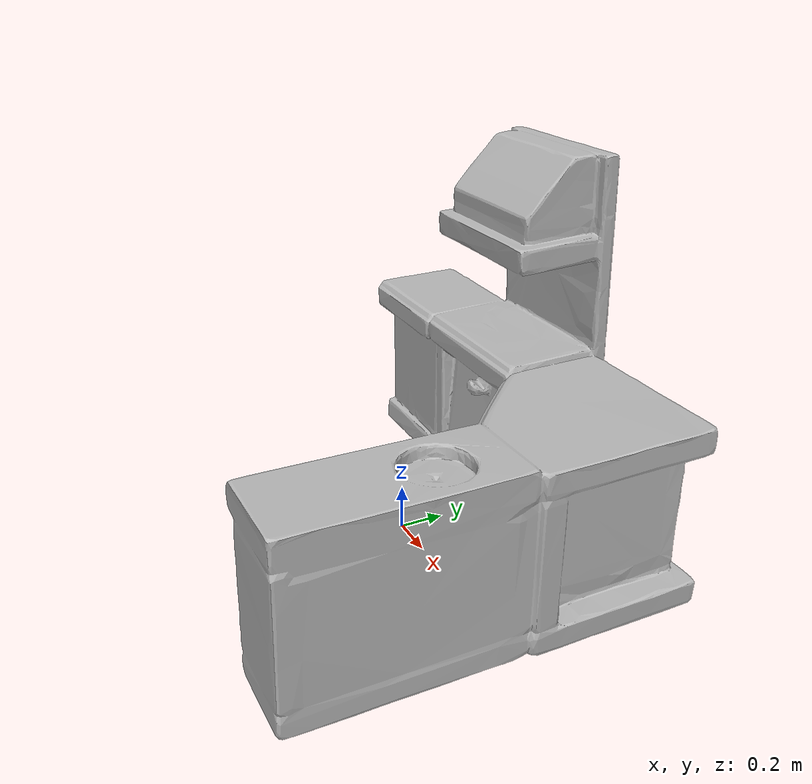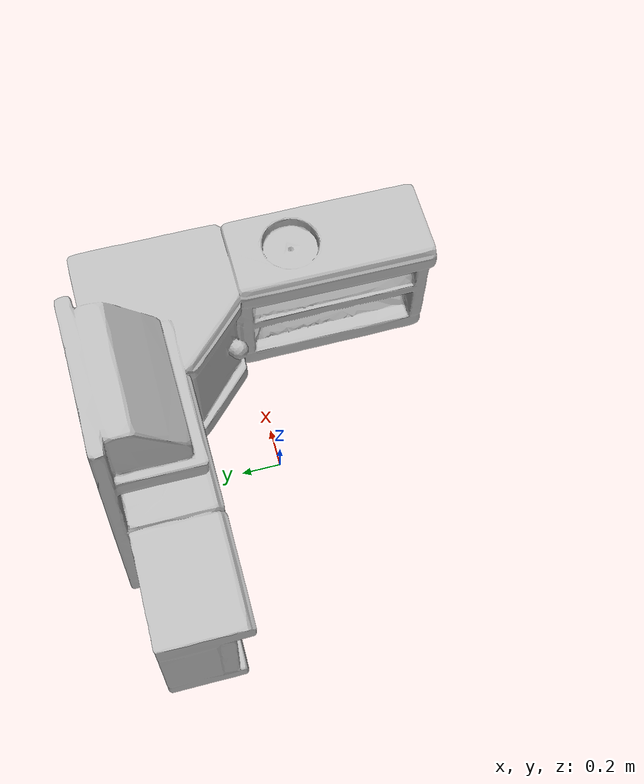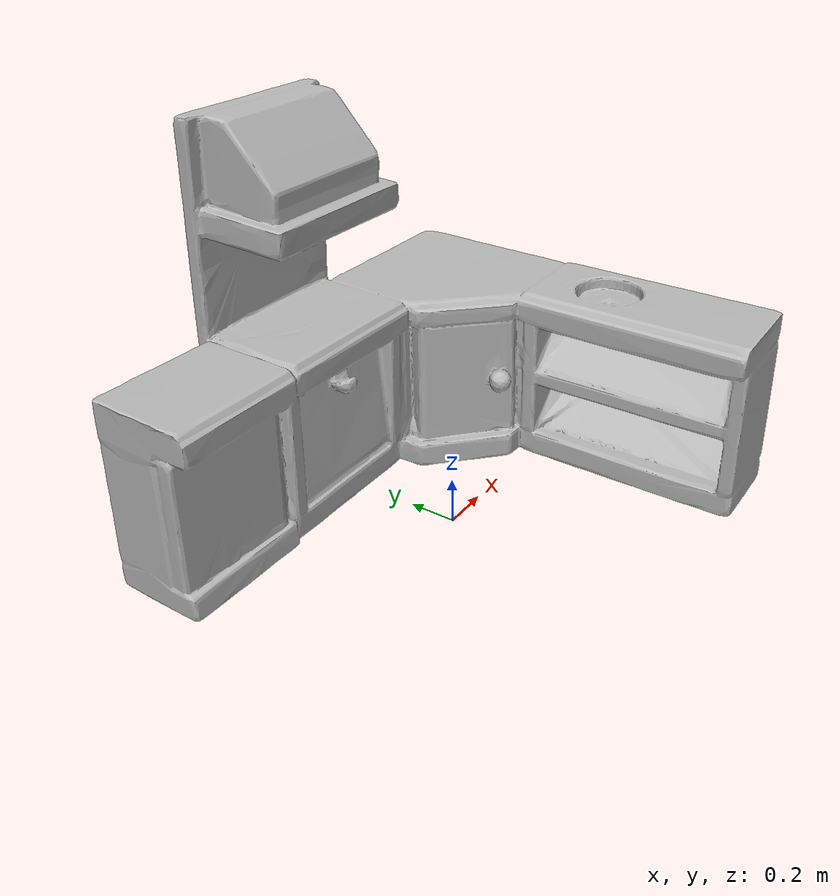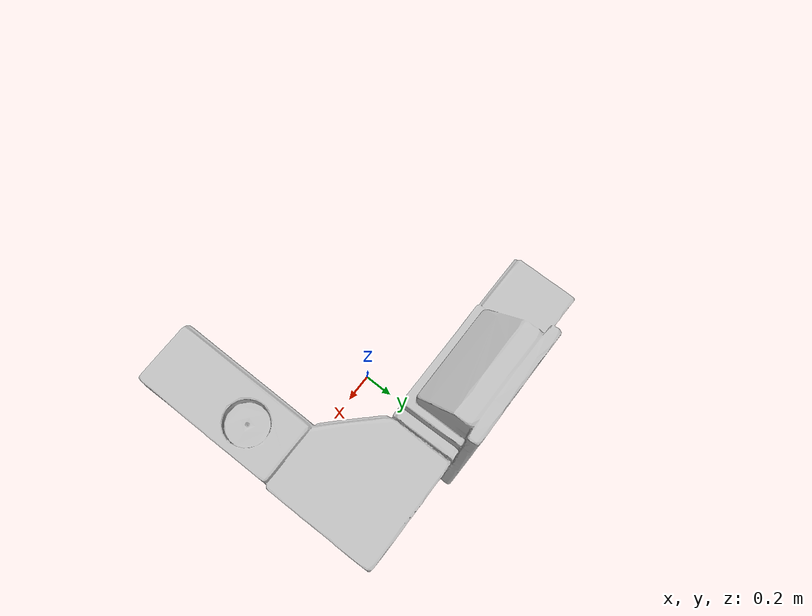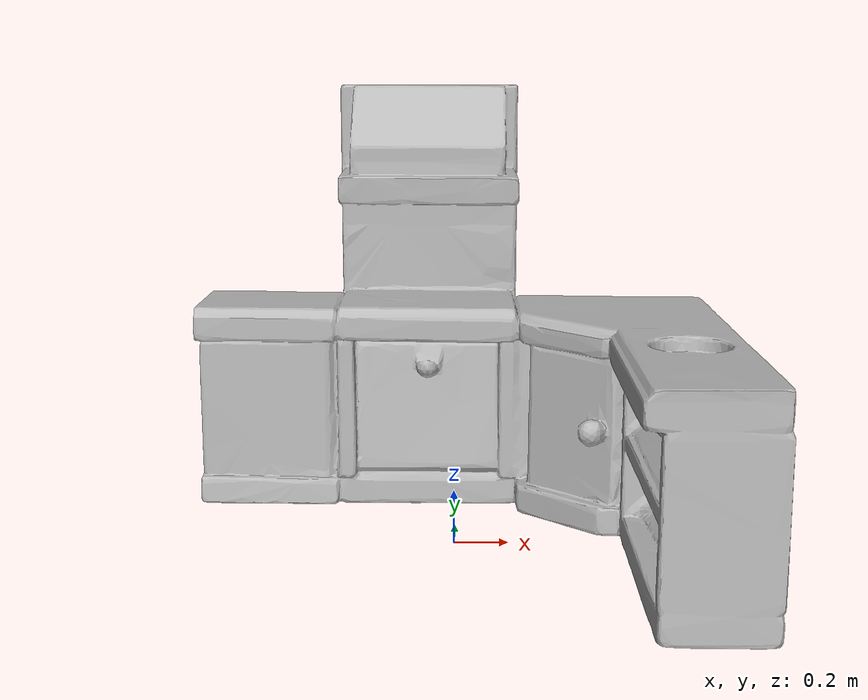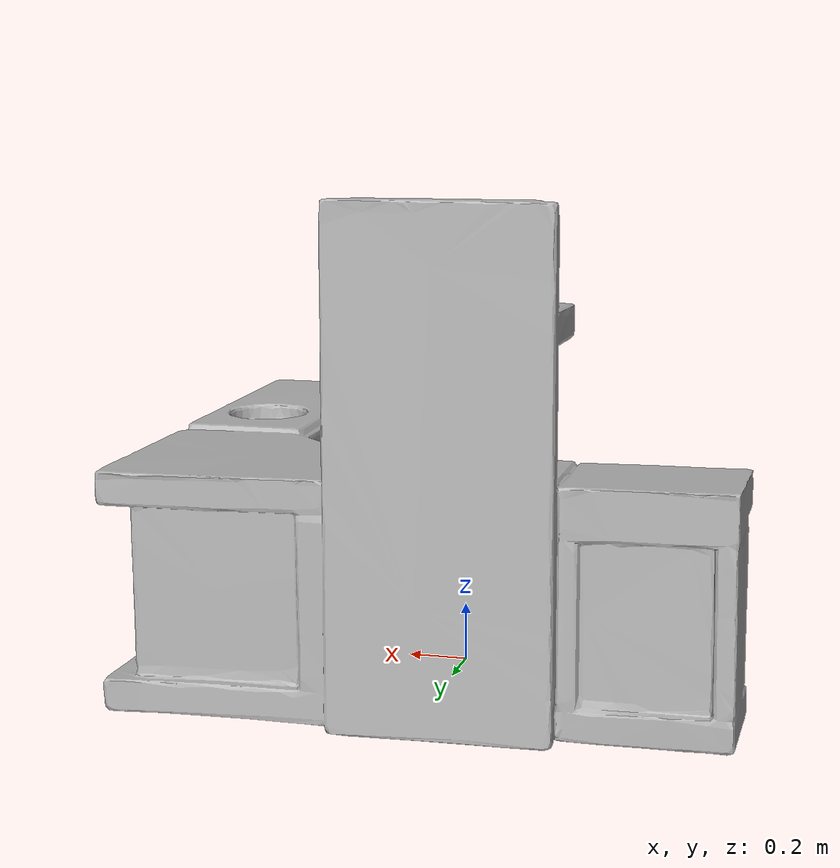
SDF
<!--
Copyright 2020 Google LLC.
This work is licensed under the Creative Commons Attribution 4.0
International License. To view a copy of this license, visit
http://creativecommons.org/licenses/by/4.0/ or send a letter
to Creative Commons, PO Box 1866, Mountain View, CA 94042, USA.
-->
<?xml version="1.0" ?>
<sdf version="1.6">
  <model name="KITCHEN_SET_CLASSIC_40HwCHfeG0H">
    <link name="link_0">
      <visual name="visual">
        <geometry>
          <mesh>
            <uri>file:///workspaces/robman-final-proj/assets/KITCHEN_SET_CLASSIC_40HwCHfeG0H/meshes/model.obj</uri>
            <scale>11 11 11</scale>
          </mesh>
        </geometry>
      </visual>
      <collision name="collision_0">
        <geometry>
          <mesh>
            <uri>file:///workspaces/robman-final-proj/assets/KITCHEN_SET_CLASSIC_40HwCHfeG0H/meshes/model.obj</uri>
            <scale>11 11 11</scale>
          </mesh>
        </geometry>
      </collision>
    </link>
  </model>
</sdf>
